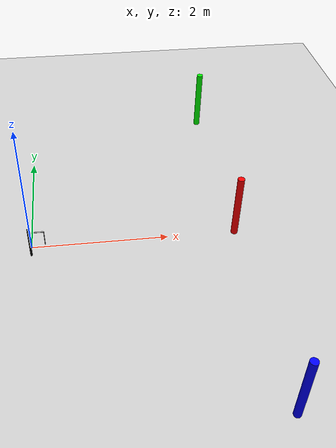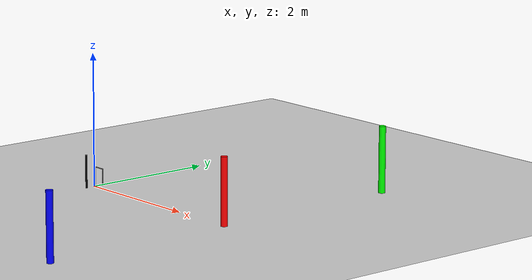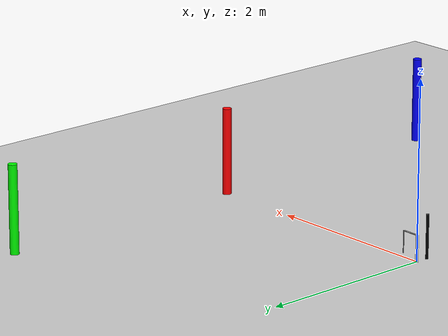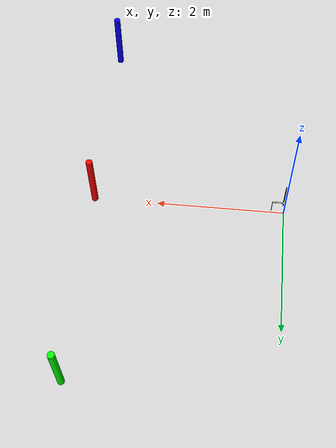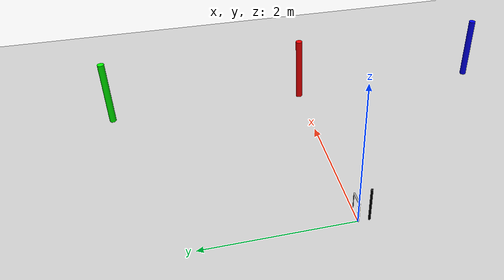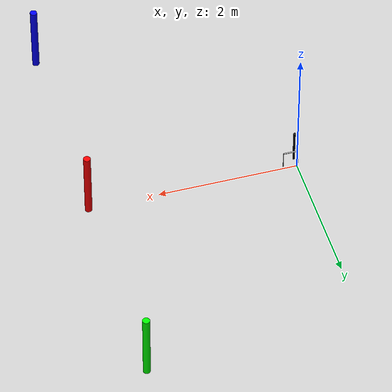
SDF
<?xml version="1.0" ?>
<sdf version="1.5">
  <world name="default">
    <!-- Ground -->
    <include>
      <uri>model://ground_plane</uri>
    </include>
    <!-- A global light source -->
    <include>
      <uri>model://sun</uri>
    </include>

    <magnetic_field>.1 0 0</magnetic_field>

    <physics type='ode'>
      <max_step_size>0.001</max_step_size>
      <real_time_factor>1</real_time_factor>
      <real_time_update_rate>1000</real_time_update_rate>
      <gravity>0 0 -9.8</gravity>
    </physics>

    <!-- Rotary Inverted Pendulum -->
    <model name="rip">
      <link name='base'>
        <pose>0 0 0 0 0 0</pose>
        <visual name="visual">
          <pose>0 0 .148 0 0 0</pose>
          <geometry>
            <cylinder>
              <radius>0.015</radius>
              <length>.297</length>
            </cylinder>
          </geometry>
        </visual>
      </link>

      <joint name="base_joint" type="fixed">
        <parent>world</parent>
        <child>base</child>
        <pose>0 0 0 0 0 0</pose>
      </joint>

      <link name='arm'>
        <pose>0 0 .3 0 0 0</pose>
        <gravity>true</gravity>
        <inertial>
          <mass>0.0395</mass>
          <inertia>
            <ixx>.000125</ixx>
            <iyy>.000125</iyy>
            <izz>.0000125</izz>
            <ixy>0</ixy>
            <ixz>0</ixz>
            <iyz>0</iyz>
          </inertia>
          <pose>.09 0 0 0 0 0</pose>
        </inertial>
        <visual name="visual">
          <pose>.095 0 0 0 0 0</pose>
          <geometry>
            <box>
              <size>.200 .020 .005</size>
            </box>
          </geometry>
        </visual>
        <collision name="collision">
          <pose>.095 0 0 0 0 0</pose>
          <geometry>
            <box>
              <size>.200 .020 .005</size>
            </box>
          </geometry>
        </collision>

        <sensor name="contact_sensor" type="contact">
          <contact>
            <collision>collision</collision>
          </contact>
          <always_on>true</always_on>
        </sensor>
      </link>

      <joint name="joint_1" type="revolute">
        <parent>base</parent>
        <child>arm</child>
        <axis>
          <xyz>0 0 1</xyz>
          <dynamics>
            <damping>0.00001</damping>
            <friction>0.000000</friction>
          </dynamics>
        </axis>
      </joint>

      <link name='pendulum'>
        <pose>.2 0 .3 0 0 0</pose>
        <gravity>true</gravity>
        <inertial>
          <mass>0.192</mass>
          <inertia>
            <ixx>.000866</ixx>
            <iyy>.000866</iyy>
            <izz>.0000866</izz>
            <ixy>0</ixy>
            <ixz>0</ixz>
            <iyz>0</iyz>
          </inertia>
          <pose>0 0 -.128 0 0 0</pose>
        </inertial>
        <visual name="visual">
          <pose>0 0 -.125 0 0 0</pose>
          <geometry>
            <cylinder>
             <radius>.005</radius>
             <length>.250</length>
            </cylinder>
          </geometry>
        </visual>
        <sensor name="camera" type="camera">
          <pose>0 0 -.250 0 0 0</pose>
          <camera>
            <horizontal_fov>1.047</horizontal_fov>
            <image>
              <width>320</width>
              <height>240</height>
            </image>
            <clip>
              <near>0.1</near>
              <far>100</far>
            </clip>
          </camera>
          <always_on>1</always_on>
          <update_rate>30</update_rate>
          <visualize>false</visualize>
        </sensor>
        <sensor name="depth" type="depth">
          <pose>0 0 -.250 0 0 0</pose>
          <camera>
            <horizontal_fov>1.047</horizontal_fov>
            <image>
              <width>320</width>
              <height>240</height>
            </image>
            <clip>
              <near>0.1</near>
              <far>100</far>
            </clip>
          </camera>
          <always_on>1</always_on>
          <update_rate>30</update_rate>
          <visualize>false</visualize>
        </sensor>
        <sensor name="logical_camera" type="logical_camera">
          <pose>0 0 -.250 0 0 0</pose>
          <logical_camera>
            <horizontal_fov>1.047</horizontal_fov>
            <near>0.1</near>
            <far>100</far>
            <aspect_ration>1</aspect_ration>
          </logical_camera>
          <always_on>1</always_on>
          <update_rate>30</update_rate>
          <visualize>false</visualize>
        </sensor>
        <sensor name="laser" type="ray">
          <pose>0 0 -.250 0 0 0</pose>
          <ray>
            <scan>
              <horizontal>
                <samples>100</samples>
                <resolution>1</resolution>
                <min_angle>-0.5</min_angle>
                <max_angle>0.5</max_angle>
              </horizontal>
              <vertical>
                <samples>100</samples>
                <resolution>1</resolution>
                <min_angle>-0.5</min_angle>
                <max_angle>0.5</max_angle>
              </vertical>
            </scan>
            <range>
              <min>0.08</min>
              <max>100</max>
            </range>
          </ray>
          <always_on>1</always_on>
          <update_rate>30</update_rate>
        </sensor>
        <sensor name="gpulaser" type="gpu_ray">
          <pose>0 0 -.250 0 0 0</pose>
          <ray>
            <scan>
              <horizontal>
                <samples>100</samples>
                <resolution>1</resolution>
                <min_angle>-0.5</min_angle>
                <max_angle>0.5</max_angle>
              </horizontal>
              <vertical>
                <samples>100</samples>
                <resolution>1</resolution>
                <min_angle>-0.5</min_angle>
                <max_angle>0.5</max_angle>
              </vertical>
            </scan>
            <range>
              <min>0.08</min>
              <max>100</max>
            </range>
          </ray>
          <always_on>1</always_on>
          <update_rate>30</update_rate>
        </sensor>

        <sensor name="altimeter" type="altimeter">
          <pose>0 0 -.250 0 0 0</pose>
          <always_on>true</always_on>
        </sensor>
        <sensor name="sonar" type="sonar">
          <pose>0 0 -.250 0 0 0</pose>
          <sonar>
            <min>0.1</min>
            <max>10</max>
            <radius>.25</radius>
          </sonar>
          <update_rate>30</update_rate>
          <always_on>true</always_on>
          <visualize>false</visualize>
        </sensor>
        <sensor name="magnetometer" type="magnetometer">
          <pose>0 0 -.250 0 0 0</pose>
          <always_on>true</always_on>
          <update_rate>30</update_rate>
        </sensor>
      </link>

      <joint name="joint_2" type="revolute">
        <parent>arm</parent>
        <child>pendulum</child>
        <axis>
          <xyz>1 0 0</xyz>
          <dynamics>
            <damping>0.00001</damping>
            <friction>0.000000</friction>
          </dynamics>
        </axis>
        <sensor name="force_torque" type="force_torque">
          <always_on>true</always_on>
          <update_rate>30</update_rate>
        </sensor>
      </joint>
    </model>

    <!-- Put in some cylinders so the camera has something to look at -->
    <model name="post">
       <static>true</static>
       <link name="post1">
         <visual name="visual">
           <pose>3 0 0.5 0 0 0</pose>
           <geometry>
             <cylinder>
               <radius>0.05</radius>
               <length>1</length>
             </cylinder>
           </geometry>
           <material>
             <ambient>1 0 0 0</ambient>
           </material>
         </visual>
         <collision name="collision">
           <pose>3 0 0.5 0 0 0</pose>
           <geometry>
             <cylinder>
               <radius>0.05</radius>
               <length>1</length>
             </cylinder>
           </geometry>
         </collision>
       </link>
       <link name="post2">
         <visual name="visual">
           <pose>3 3 .5 0 0 0</pose>
           <geometry>
             <cylinder>
               <radius>0.05</radius>
               <length>1</length>
             </cylinder>
           </geometry>
           <material>
             <ambient>0 1 0 0</ambient>
           </material>
         </visual>
         <collision name="collision">
           <pose>3 0 0.5 0 0 0</pose>
           <geometry>
             <cylinder>
               <radius>0.05</radius>
               <length>1</length>
             </cylinder>
           </geometry>
         </collision>
       </link>
       <link name="post3">
         <visual name="visual">
           <pose>3.0 -3.0 0.5 0 0 0</pose>
           <geometry>
             <cylinder>
               <radius>0.05</radius>
               <length>1</length>
             </cylinder>
           </geometry>
           <material>
             <ambient>0 0 1 0</ambient>
           </material>
         </visual>
         <collision name="collision">
           <pose>3 0 0.5 0 0 0</pose>
           <geometry>
             <cylinder>
               <radius>0.05</radius>
               <length>1</length>
             </cylinder>
           </geometry>
         </collision>
       </link>
       <link name="post3">
         <visual name="visual">
           <pose>0 -0.15 0.25 0 0 0</pose>
           <geometry>
             <cylinder>
               <radius>0.015</radius>
               <length>.5</length>
             </cylinder>
           </geometry>
           <material>
             <ambient>0 0 0 0</ambient>
           </material>
         </visual>
         <collision name="collision">
           <pose>0 -0.15 0.25 0 0 0</pose>
           <geometry>
             <cylinder>
               <radius>0.015</radius>
               <length>.5</length>
             </cylinder>
           </geometry>
         </collision>
       </link>
    </model>

  </world>
</sdf>
